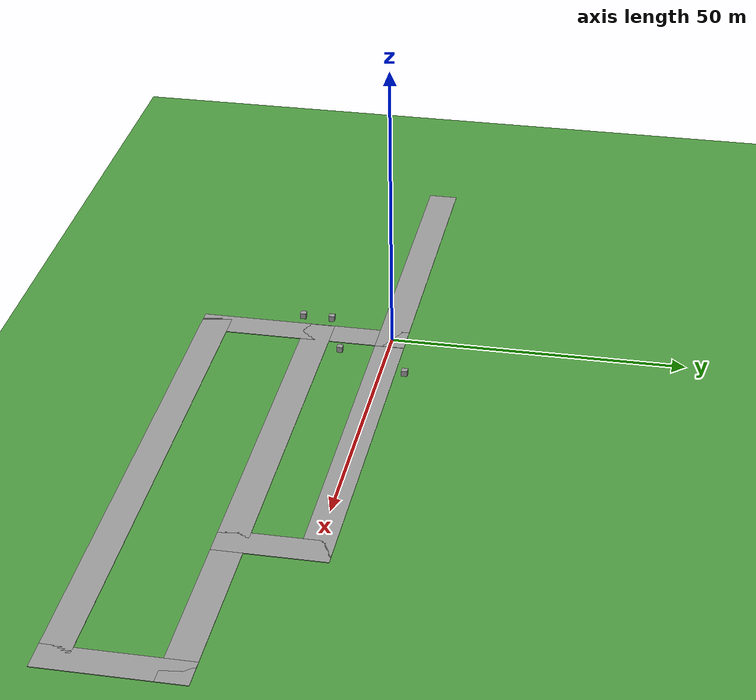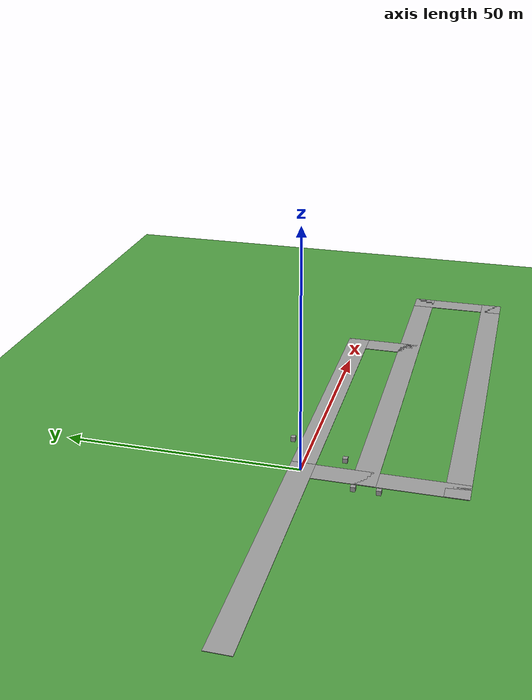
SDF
<sdf version="1.4">
 <world name="default">
  <model name="ground_plane">
   <static>1</static>
   <link name="link">
    <collision name="collision">
     <geometry><plane><normal>0 0 1</normal><size>10000 10000</size></plane></geometry>
     <surface><friction><ode><mu>100</mu><mu2>50</mu2></ode></friction></surface>
    </collision>
    <visual name="visual">
     <cast_shadows>0</cast_shadows>
     <geometry><plane><normal>0 0 1</normal><size>10000 10000</size></plane></geometry>
     <material>
      <script>
       <uri>model://ds_grass_background/materials/scripts</uri>
       <uri>model://ds_grass_background/materials/textures</uri>
       <name>GrassBackground</name>
      </script>
     </material>
    </visual>
    <velocity_decay><linear>0</linear><angular>0</angular></velocity_decay>
   </link>
  </model>
  <model name="BuildingDefaultName">
   <link name="Wall_0">
    <collision name="Wall_0_Collision">
     <geometry><box><size>65 5 0.1</size></box></geometry>
     <pose>0 0 0.05 0 -0 0</pose>
    </collision>
    <visual name="Wall_0_Visual">
     <pose>0 0 0.05 0 -0 0</pose>
     <geometry><box><size>65 5 0.1</size></box></geometry>
     <material>
      <script><uri>file://media/materials/scripts/gazebo.material</uri><name>Gazebo/Grey</name></script>
     </material>
    </visual>
    <velocity_decay><linear>0</linear><angular>0</angular></velocity_decay>
    <pose>30 0 0 0 -0 0</pose>
   </link>
   <link name="Wall_10">
    <collision name="Wall_10_Collision">
     <geometry><box><size>23 5 0.1</size></box></geometry>
     <pose>0 0 0.05 0 -0 0</pose>
    </collision>
    <visual name="Wall_10_Visual">
     <pose>0 0 0.05 0 -0 0</pose>
     <geometry><box><size>23 5 0.1</size></box></geometry>
     <material>
      <script><uri>file://media/materials/scripts/gazebo.material</uri><name>Gazebo/Grey</name></script>
     </material>
    </visual>
    <velocity_decay><linear>0</linear><angular>0</angular></velocity_decay>
    <pose>90 -22 0 0 0 -1.5708</pose>
   </link>
   <link name="Wall_12">
    <collision name="Wall_12_Collision">
     <geometry><box><size>55 5 0.1</size></box></geometry>
     <pose>0 0 0.05 0 -0 0</pose>
    </collision>
    <visual name="Wall_12_Visual">
     <pose>0 0 0.05 0 -0 0</pose>
     <geometry><box><size>55 5 0.1</size></box></geometry>
     <material>
      <script><uri>file://media/materials/scripts/gazebo.material</uri><name>Gazebo/Grey</name></script>
     </material>
    </visual>
    <velocity_decay><linear>0</linear><angular>0</angular></velocity_decay>
    <pose>-25 0 0 0 -0 0</pose>
   </link>
   <link name="Wall_2">
    <collision name="Wall_2_Collision">
     <geometry><box><size>95 5 0.1</size></box></geometry>
     <pose>0 0 0.05 0 -0 0</pose>
    </collision>
    <visual name="Wall_2_Visual">
     <pose>0 0 0.05 0 -0 0</pose>
     <geometry><box><size>95 5 0.1</size></box></geometry>
     <material>
      <script><uri>file://media/materials/scripts/gazebo.material</uri><name>Gazebo/Grey</name></script>
     </material>
    </visual>
    <velocity_decay><linear>0</linear><angular>0</angular></velocity_decay>
    <pose>45 -31 0 0 -0 0</pose>
   </link>
   <link name="Wall_4">
    <collision name="Wall_4_Collision">
     <geometry><box><size>36 5 0.1</size></box></geometry>
     <pose>0 0 0.05 0 -0 0</pose>
    </collision>
    <visual name="Wall_4_Visual">
     <pose>0 0 0.05 0 -0 0</pose>
     <geometry><box><size>36 5 0.1</size></box></geometry>
     <material>
      <script><uri>file://media/materials/scripts/gazebo.material</uri><name>Gazebo/Grey</name></script>
     </material>
    </visual>
    <velocity_decay><linear>0</linear><angular>0</angular></velocity_decay>
    <pose>-0.093576 -15.5 0 0 0 -1.5708</pose>
   </link>
   <link name="Wall_6">
    <collision name="Wall_6_Collision">
     <geometry><box><size>95 5 0.1</size></box></geometry>
     <pose>0 0 0.05 0 -0 0</pose>
    </collision>
    <visual name="Wall_6_Visual">
     <pose>0 0 0.05 0 -0 0</pose>
     <geometry><box><size>95 5 0.1</size></box></geometry>
     <material>
      <script><uri>file://media/materials/scripts/gazebo.material</uri><name>Gazebo/Grey</name></script>
     </material>
    </visual>
    <velocity_decay><linear>0</linear><angular>0</angular></velocity_decay>
    <pose>45 -13 0 0 -0 0</pose>
   </link>
   <link name="Wall_8">
    <collision name="Wall_8_Collision">
     <geometry><box><size>18 5 0.1</size></box></geometry>
     <pose>0 0 0.05 0 -0 0</pose>
    </collision>
    <visual name="Wall_8_Visual">
     <pose>0 0 0.05 0 -0 0</pose>
     <geometry><box><size>18 5 0.1</size></box></geometry>
     <material>
      <script><uri>file://media/materials/scripts/gazebo.material</uri><name>Gazebo/Grey</name></script>
     </material>
    </visual>
    <velocity_decay><linear>0</linear><angular>0</angular></velocity_decay>
    <pose>60 -6.5 0 0 0 -1.5708</pose>
   </link>
   <static>1</static>
  </model>
  <model name="unit_box_3">
   <pose>5 -8 0.5 -0 -0 -0</pose>
   <link name="link">
    <inertial>
     <mass>1</mass>
     <inertia><ixx>1</ixx><ixy>0</ixy><ixz>0</ixz><iyy>1</iyy><iyz>0</iyz><izz>1</izz></inertia>
    </inertial>
    <collision name="collision"><geometry><box><size>2.21246 4.25329 1</size></box></geometry></collision>
    <visual name="visual">
     <geometry><box><size>1 1 1</size></box></geometry>
     <material>
      <script><uri>file://media/materials/scripts/gazebo.material</uri><name>Gazebo/Grey</name></script>
     </material>
    </visual>
    <velocity_decay><linear>0</linear><angular>0</angular></velocity_decay>
   </link>
   <static>0</static>
  </model>
  <model name="unit_box_43">
   <pose>10.4644 4.13359 0.5 0 -0 0</pose>
   <link name="link">
    <inertial>
     <mass>1</mass>
     <inertia><ixx>1</ixx><ixy>0</ixy><ixz>0</ixz><iyy>1</iyy><iyz>0</iyz><izz>1</izz></inertia>
    </inertial>
    <collision name="collision"><geometry><box><size>4.07249 1.79245 1</size></box></geometry></collision>
    <visual name="visual">
     <geometry><box><size>1 1 1</size></box></geometry>
     <material>
      <script><uri>file://media/materials/scripts/gazebo.material</uri><name>Gazebo/Grey</name></script>
     </material>
    </visual>
    <velocity_decay><linear>0</linear><angular>0</angular></velocity_decay>
   </link>
   <static>0</static>
  </model>
  <model name="unit_box_51">
   <pose>-4.57635 -11.4348 0.5 0 -0 0</pose>
   <link name="link">
    <inertial>
     <mass>1</mass>
     <inertia><ixx>1</ixx><ixy>0</ixy><ixz>0</ixz><iyy>1</iyy><iyz>0</iyz><izz>1</izz></inertia>
    </inertial>
    <collision name="collision"><geometry><box><size>2.01055 3.72793 1</size></box></geometry></collision>
    <visual name="visual">
     <geometry><box><size>1 1 1</size></box></geometry>
     <material>
      <script><uri>file://media/materials/scripts/gazebo.material</uri><name>Gazebo/Grey</name></script>
     </material>
    </visual>
    <velocity_decay><linear>0</linear><angular>0</angular></velocity_decay>
   </link>
   <static>0</static>
  </model>
  <model name="unit_box_52">
   <pose>-4.59873 -16.4574 0.499995 0 4e-06 0</pose>
   <link name="link">
    <inertial>
     <mass>1</mass>
     <inertia><ixx>1</ixx><ixy>0</ixy><ixz>0</ixz><iyy>1</iyy><iyz>0</iyz><izz>1</izz></inertia>
    </inertial>
    <collision name="collision"><geometry><box><size>2.31894 3.91091 1</size></box></geometry></collision>
    <visual name="visual">
     <geometry><box><size>1 1 1</size></box></geometry>
     <material>
      <script><uri>file://media/materials/scripts/gazebo.material</uri><name>Gazebo/Grey</name></script>
     </material>
    </visual>
    <velocity_decay><linear>0</linear><angular>0</angular></velocity_decay>
   </link>
   <static>0</static>
  </model>
 </world>
</sdf>
